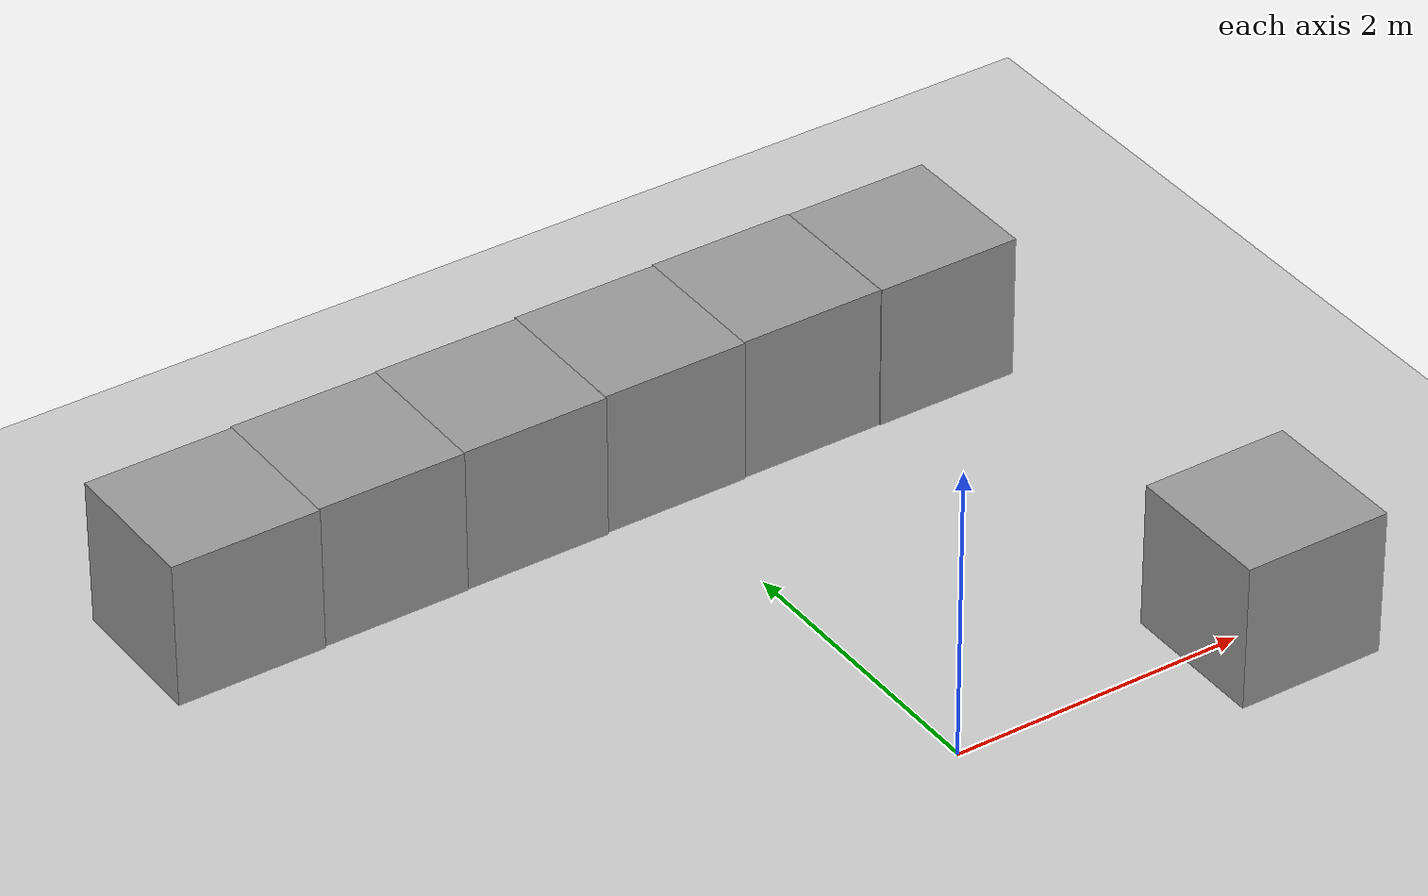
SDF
<sdf version="1.4">
 <world name="default">
  <light name="sun" type="directional">
   <pose>0 0 10 0 -0 0</pose>
   <diffuse>0.8 0.8 0.8 1</diffuse>
   <specular>0.2 0.2 0.2 1</specular>
   <attenuation>
    <range>1000</range>
    <constant>0.9</constant>
    <linear>0.01</linear>
    <quadratic>0.001</quadratic>
   </attenuation>
   <direction>-0.5 0.1 -0.9</direction>
  </light>
  <model name="ground_plane">
   <static>1</static>
   <link name="link">
    <collision name="collision">
     <geometry><plane><normal>0 0 1</normal><size>100 100</size></plane></geometry>
     <surface><friction><ode><mu>100</mu><mu2>50</mu2></ode></friction></surface>
    </collision>
    <visual name="visual">
     <cast_shadows>0</cast_shadows>
     <geometry><plane><normal>0 0 1</normal><size>100 100</size></plane></geometry>
     <material>
      <script><uri>file://media/materials/scripts/gazebo.material</uri><name>Gazebo/Grey</name></script>
     </material>
    </visual>
    <velocity_decay><linear>0</linear><angular>0</angular></velocity_decay>
   </link>
  </model>
  <physics type="ode">
   <max_step_size>0.01</max_step_size>
   <real_time_factor>1</real_time_factor>
   <real_time_update_rate>100</real_time_update_rate>
   <gravity>0 0 -9.8</gravity>
  </physics>
  <scene><ambient>0.4 0.4 0.4 1</ambient><background>0.7 0.7 0.7 1</background><shadows>1</shadows></scene>
  <model name="unit_box_1">
   <pose>2.12822 -0.068855 0.5 0 -0 0</pose>
   <link name="link">
    <inertial>
     <mass>1</mass>
     <inertia><ixx>1</ixx><ixy>0</ixy><ixz>0</ixz><iyy>1</iyy><iyz>0</iyz><izz>1</izz></inertia>
    </inertial>
    <collision name="collision"><geometry><box><size>1 1 1</size></box></geometry></collision>
    <visual name="visual">
     <geometry><box><size>1 1 1</size></box></geometry>
     <material>
      <script><uri>file://media/materials/scripts/gazebo.material</uri><name>Gazebo/Grey</name></script>
     </material>
    </visual>
    <velocity_decay><linear>0</linear><angular>0</angular></velocity_decay>
   </link>
   <static>0</static>
  </model>
  <model name="unit_box_2">
   <pose>2.00046 3.44868 0.5 0 -0 0.001101</pose>
   <link name="link">
    <inertial>
     <mass>1</mass>
     <inertia><ixx>1</ixx><ixy>0</ixy><ixz>0</ixz><iyy>1</iyy><iyz>0</iyz><izz>1</izz></inertia>
    </inertial>
    <collision name="collision"><geometry><box><size>1 1 1</size></box></geometry></collision>
    <visual name="visual">
     <geometry><box><size>1 1 1</size></box></geometry>
     <material>
      <script><uri>file://media/materials/scripts/gazebo.material</uri><name>Gazebo/Grey</name></script>
     </material>
    </visual>
    <velocity_decay><linear>0</linear><angular>0</angular></velocity_decay>
   </link>
   <static>0</static>
  </model>
  <model name="unit_box_3">
   <pose>0.999969 3.45508 0.5 0 -0 0.000131</pose>
   <link name="link">
    <inertial>
     <mass>1</mass>
     <inertia><ixx>1</ixx><ixy>0</ixy><ixz>0</ixz><iyy>1</iyy><iyz>0</iyz><izz>1</izz></inertia>
    </inertial>
    <collision name="collision"><geometry><box><size>1 1 1</size></box></geometry></collision>
    <visual name="visual">
     <geometry><box><size>1 1 1</size></box></geometry>
     <material>
      <script><uri>file://media/materials/scripts/gazebo.material</uri><name>Gazebo/Grey</name></script>
     </material>
    </visual>
    <velocity_decay><linear>0</linear><angular>0</angular></velocity_decay>
   </link>
   <static>0</static>
  </model>
  <model name="unit_box_4">
   <pose>-3.6e-05 3.44368 0.5 0 -0 0.000126</pose>
   <link name="link">
    <inertial>
     <mass>1</mass>
     <inertia><ixx>1</ixx><ixy>0</ixy><ixz>0</ixz><iyy>1</iyy><iyz>0</iyz><izz>1</izz></inertia>
    </inertial>
    <collision name="collision"><geometry><box><size>1 1 1</size></box></geometry></collision>
    <visual name="visual">
     <geometry><box><size>1 1 1</size></box></geometry>
     <material>
      <script><uri>file://media/materials/scripts/gazebo.material</uri><name>Gazebo/Grey</name></script>
     </material>
    </visual>
    <velocity_decay><linear>0</linear><angular>0</angular></velocity_decay>
   </link>
   <static>0</static>
  </model>
  <model name="unit_box_5">
   <pose>-1.00009 3.42836 0.5 0 -0 0.000117</pose>
   <link name="link">
    <inertial>
     <mass>1</mass>
     <inertia><ixx>1</ixx><ixy>0</ixy><ixz>0</ixz><iyy>1</iyy><iyz>0</iyz><izz>1</izz></inertia>
    </inertial>
    <collision name="collision"><geometry><box><size>1 1 1</size></box></geometry></collision>
    <visual name="visual">
     <geometry><box><size>1 1 1</size></box></geometry>
     <material>
      <script><uri>file://media/materials/scripts/gazebo.material</uri><name>Gazebo/Grey</name></script>
     </material>
    </visual>
    <velocity_decay><linear>0</linear><angular>0</angular></velocity_decay>
   </link>
   <static>0</static>
  </model>
  <model name="unit_box_6">
   <pose>-2.00013 3.42072 0.5 0 -0 8.7e-05</pose>
   <link name="link">
    <inertial>
     <mass>1</mass>
     <inertia><ixx>1</ixx><ixy>0</ixy><ixz>0</ixz><iyy>1</iyy><iyz>0</iyz><izz>1</izz></inertia>
    </inertial>
    <collision name="collision"><geometry><box><size>1 1 1</size></box></geometry></collision>
    <visual name="visual">
     <geometry><box><size>1 1 1</size></box></geometry>
     <material>
      <script><uri>file://media/materials/scripts/gazebo.material</uri><name>Gazebo/Grey</name></script>
     </material>
    </visual>
    <velocity_decay><linear>0</linear><angular>0</angular></velocity_decay>
   </link>
   <static>0</static>
  </model>
  <model name="unit_box_7">
   <pose>-3.00015 3.4067 0.5 0 -0 9.7e-05</pose>
   <link name="link">
    <inertial>
     <mass>1</mass>
     <inertia><ixx>1</ixx><ixy>0</ixy><ixz>0</ixz><iyy>1</iyy><iyz>0</iyz><izz>1</izz></inertia>
    </inertial>
    <collision name="collision"><geometry><box><size>1 1 1</size></box></geometry></collision>
    <visual name="visual">
     <geometry><box><size>1 1 1</size></box></geometry>
     <material>
      <script><uri>file://media/materials/scripts/gazebo.material</uri><name>Gazebo/Grey</name></script>
     </material>
    </visual>
    <velocity_decay><linear>0</linear><angular>0</angular></velocity_decay>
   </link>
   <static>0</static>
  </model>
 </world>
</sdf>
